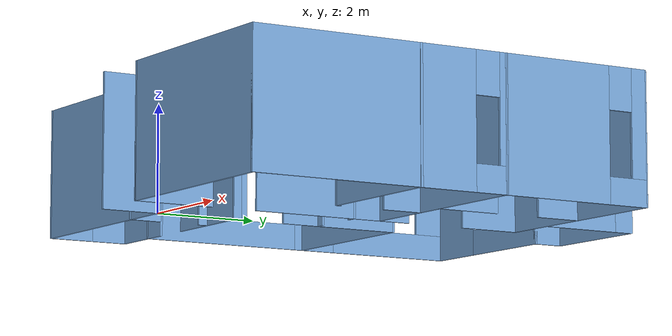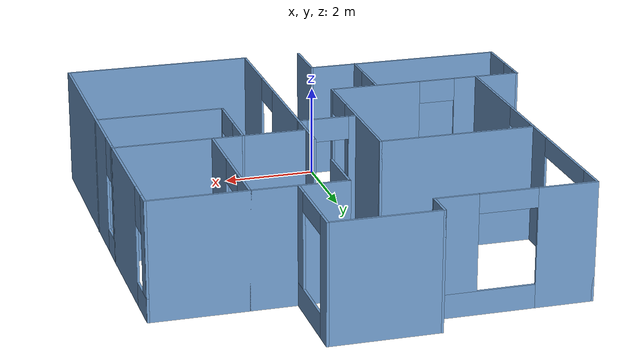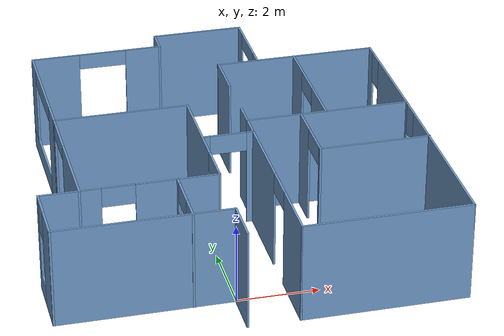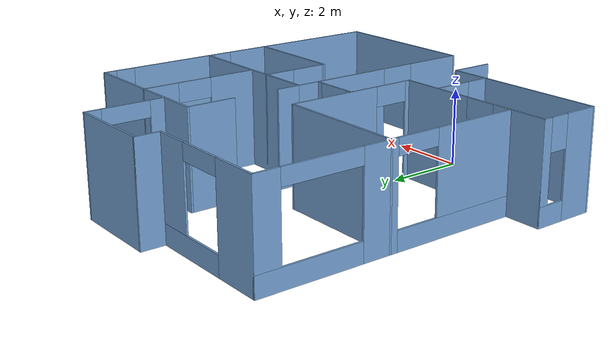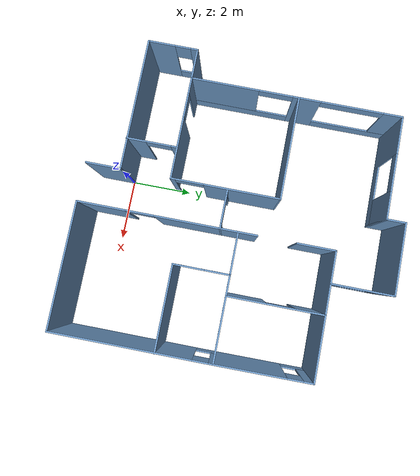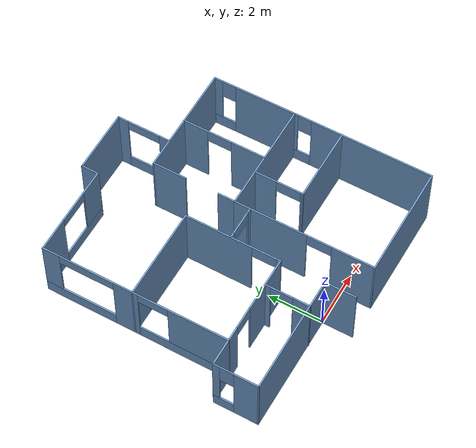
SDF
<?xml version='1.0'?>
<sdf version='1.6'>
  <model name='T8_1160'>
    <pose frame=''>0.515 3.94713 0 0 -0 0</pose>
    <link name='Wall_0'>
      <collision name='Wall_0_Collision'>
        <geometry>
          <box>
            <size>4.31 0.05 2.5</size>
          </box>
        </geometry>
        <pose frame=''>0 0 1.25 0 -0 0</pose>
      </collision>
      <visual name='Wall_0_Visual'>
        <pose frame=''>0 0 1.25 0 -0 0</pose>
        <geometry>
          <box>
            <size>4.31 0.05 2.5</size>
          </box>
        </geometry>
        <material>
          <script>
            <uri>file://media/materials/scripts/gazebo.material</uri>
            <name>Gazebo/Grey</name>
          </script>
          <ambient>0.447059 0.623529 0.811765 1</ambient>
        </material>
        <meta>
          <layer>0</layer>
        </meta>
      </visual>
      <pose frame=''>-2.645 -3.94713 0 0 -0 3.14159</pose>
    </link>
    <link name='Wall_11'>
      <collision name='Wall_11_Collision'>
        <geometry>
          <box>
            <size>3.35552 0.05 2.5</size>
          </box>
        </geometry>
        <pose frame=''>0 0 1.25 0 -0 0</pose>
      </collision>
      <visual name='Wall_11_Visual'>
        <pose frame=''>0 0 1.25 0 -0 0</pose>
        <geometry>
          <box>
            <size>3.35552 0.05 2.5</size>
          </box>
        </geometry>
        <material>
          <script>
            <uri>file://media/materials/scripts/gazebo.material</uri>
            <name>Gazebo/Grey</name>
          </script>
          <ambient>0.447059 0.623529 0.811765 1</ambient>
        </material>
        <meta>
          <layer>0</layer>
        </meta>
      </visual>
      <pose frame=''>-2.1675 1.12987 0 0 -0 3.14159</pose>
    </link>
    <link name='Wall_14'>
      <pose frame=''>-3.82 -0.608633 0 0 -0 -1.5708</pose>
      <visual name='Wall_14_Visual_0'>
        <pose frame=''>-1.65666 0 1.25 0 -0 0</pose>
        <geometry>
          <box>
            <size>0.213672 0.05 2.5</size>
          </box>
        </geometry>
        <material>
          <script>
            <uri>file://media/materials/scripts/gazebo.material</uri>
            <name>Gazebo/Grey</name>
          </script>
          <ambient>0.447059 0.623529 0.811765 1</ambient>
        </material>
        <meta>
          <layer>0</layer>
        </meta>
      </visual>
      <collision name='Wall_14_Collision_0'>
        <geometry>
          <box>
            <size>0.213672 0.05 2.5</size>
          </box>
        </geometry>
        <pose frame=''>-1.65666 0 1.25 0 -0 0</pose>
      </collision>
      <visual name='Wall_14_Visual_1'>
        <pose frame=''>0.106836 0 0.25 0 -0 0</pose>
        <geometry>
          <box>
            <size>3.31333 0.05 0.5</size>
          </box>
        </geometry>
        <material>
          <script>
            <uri>file://media/materials/scripts/gazebo.material</uri>
            <name>Gazebo/Grey</name>
          </script>
          <ambient>0.447059 0.623529 0.811765 1</ambient>
        </material>
        <meta>
          <layer>0</layer>
        </meta>
      </visual>
      <collision name='Wall_14_Collision_1'>
        <geometry>
          <box>
            <size>3.31333 0.05 0.5</size>
          </box>
        </geometry>
        <pose frame=''>0.106836 0 0.25 0 -0 0</pose>
      </collision>
      <visual name='Wall_14_Visual_2'>
        <pose frame=''>0.656836 0 1.5 0 -0 0</pose>
        <geometry>
          <box>
            <size>2.21333 0.05 2</size>
          </box>
        </geometry>
        <material>
          <script>
            <uri>file://media/materials/scripts/gazebo.material</uri>
            <name>Gazebo/Grey</name>
          </script>
          <ambient>0.447059 0.623529 0.811765 1</ambient>
        </material>
        <meta>
          <layer>0</layer>
        </meta>
      </visual>
      <collision name='Wall_14_Collision_2'>
        <geometry>
          <box>
            <size>2.21333 0.05 2</size>
          </box>
        </geometry>
        <pose frame=''>0.656836 0 1.5 0 -0 0</pose>
      </collision>
      <visual name='Wall_14_Visual_3'>
        <pose frame=''>-0.999828 0 2.3 0 -0 0</pose>
        <geometry>
          <box>
            <size>1.1 0.05 0.4</size>
          </box>
        </geometry>
        <material>
          <script>
            <uri>file://media/materials/scripts/gazebo.material</uri>
            <name>Gazebo/Grey</name>
          </script>
          <ambient>0.447059 0.623529 0.811765 1</ambient>
        </material>
        <meta>
          <layer>0</layer>
        </meta>
      </visual>
      <collision name='Wall_14_Collision_3'>
        <geometry>
          <box>
            <size>1.1 0.05 0.4</size>
          </box>
        </geometry>
        <pose frame=''>-0.999828 0 2.3 0 -0 0</pose>
      </collision>
    </link>
    <link name='Wall_16'>
      <collision name='Wall_16_Collision'>
        <geometry>
          <box>
            <size>1.15 0.05 2.5</size>
          </box>
        </geometry>
        <pose frame=''>0 0 1.25 0 -0 0</pose>
      </collision>
      <visual name='Wall_16_Visual'>
        <pose frame=''>0 0 1.25 0 -0 0</pose>
        <geometry>
          <box>
            <size>1.15 0.05 2.5</size>
          </box>
        </geometry>
        <material>
          <script>
            <uri>file://media/materials/scripts/gazebo.material</uri>
            <name>Gazebo/Grey</name>
          </script>
          <ambient>0.447059 0.623529 0.811765 1</ambient>
        </material>
        <meta>
          <layer>0</layer>
        </meta>
      </visual>
      <pose frame=''>-0.515 -4.49713 0 0 -0 -1.5708</pose>
    </link>
    <link name='Wall_18'>
      <pose frame=''>0.735 -2.51163 0 0 -0 1.5708</pose>
      <visual name='Wall_18_Visual_0'>
        <pose frame=''>-1.78983 0 1.25 0 -0 0</pose>
        <geometry>
          <box>
            <size>1.56134 0.05 2.5</size>
          </box>
        </geometry>
        <material>
          <script>
            <uri>file://media/materials/scripts/gazebo.material</uri>
            <name>Gazebo/Grey</name>
          </script>
          <ambient>0.447059 0.623529 0.811765 1</ambient>
        </material>
        <meta>
          <layer>0</layer>
        </meta>
      </visual>
      <collision name='Wall_18_Collision_0'>
        <geometry>
          <box>
            <size>1.56134 0.05 2.5</size>
          </box>
        </geometry>
        <pose frame=''>-1.78983 0 1.25 0 -0 0</pose>
      </collision>
      <visual name='Wall_18_Visual_1'>
        <pose frame=''>1.23067 0 1.25 0 -0 0</pose>
        <geometry>
          <box>
            <size>2.67966 0.05 2.5</size>
          </box>
        </geometry>
        <material>
          <script>
            <uri>file://media/materials/scripts/gazebo.material</uri>
            <name>Gazebo/Grey</name>
          </script>
          <ambient>0.447059 0.623529 0.811765 1</ambient>
        </material>
        <meta>
          <layer>0</layer>
        </meta>
      </visual>
      <collision name='Wall_18_Collision_1'>
        <geometry>
          <box>
            <size>2.67966 0.05 2.5</size>
          </box>
        </geometry>
        <pose frame=''>1.23067 0 1.25 0 -0 0</pose>
      </collision>
      <visual name='Wall_18_Visual_2'>
        <pose frame=''>-0.559159 0 2.25 0 -0 0</pose>
        <geometry>
          <box>
            <size>0.9 0.05 0.5</size>
          </box>
        </geometry>
        <material>
          <script>
            <uri>file://media/materials/scripts/gazebo.material</uri>
            <name>Gazebo/Grey</name>
          </script>
          <ambient>0.447059 0.623529 0.811765 1</ambient>
        </material>
        <meta>
          <layer>0</layer>
        </meta>
      </visual>
      <collision name='Wall_18_Collision_2'>
        <geometry>
          <box>
            <size>0.9 0.05 0.5</size>
          </box>
        </geometry>
        <pose frame=''>-0.559159 0 2.25 0 -0 0</pose>
      </collision>
    </link>
    <link name='Wall_2'>
      <pose frame=''>-4.775 -3.14713 0 0 -0 1.5708</pose>
      <visual name='Wall_2_Visual_0'>
        <pose frame=''>-0.375725 0 1.25 0 -0 0</pose>
        <geometry>
          <box>
            <size>0.89855 0.05 2.5</size>
          </box>
        </geometry>
        <material>
          <script>
            <uri>file://media/materials/scripts/gazebo.material</uri>
            <name>Gazebo/Grey</name>
          </script>
          <ambient>0.447059 0.623529 0.811765 1</ambient>
        </material>
        <meta>
          <layer>0</layer>
        </meta>
      </visual>
      <collision name='Wall_2_Collision_0'>
        <geometry>
          <box>
            <size>0.89855 0.05 2.5</size>
          </box>
        </geometry>
        <pose frame=''>-0.375725 0 1.25 0 -0 0</pose>
      </collision>
      <visual name='Wall_2_Visual_1'>
        <pose frame=''>0.449275 0 0.25 0 -0 0</pose>
        <geometry>
          <box>
            <size>0.75145 0.05 0.5</size>
          </box>
        </geometry>
        <material>
          <script>
            <uri>file://media/materials/scripts/gazebo.material</uri>
            <name>Gazebo/Grey</name>
          </script>
          <ambient>0.447059 0.623529 0.811765 1</ambient>
        </material>
        <meta>
          <layer>0</layer>
        </meta>
      </visual>
      <collision name='Wall_2_Collision_1'>
        <geometry>
          <box>
            <size>0.75145 0.05 0.5</size>
          </box>
        </geometry>
        <pose frame=''>0.449275 0 0.25 0 -0 0</pose>
      </collision>
      <visual name='Wall_2_Visual_2'>
        <pose frame=''>0.699275 0 1.5 0 -0 0</pose>
        <geometry>
          <box>
            <size>0.25145 0.05 2</size>
          </box>
        </geometry>
        <material>
          <script>
            <uri>file://media/materials/scripts/gazebo.material</uri>
            <name>Gazebo/Grey</name>
          </script>
          <ambient>0.447059 0.623529 0.811765 1</ambient>
        </material>
        <meta>
          <layer>0</layer>
        </meta>
      </visual>
      <collision name='Wall_2_Collision_2'>
        <geometry>
          <box>
            <size>0.25145 0.05 2</size>
          </box>
        </geometry>
        <pose frame=''>0.699275 0 1.5 0 -0 0</pose>
      </collision>
      <visual name='Wall_2_Visual_3'>
        <pose frame=''>0.32355 0 2.1 0 -0 0</pose>
        <geometry>
          <box>
            <size>0.5 0.05 0.8</size>
          </box>
        </geometry>
        <material>
          <script>
            <uri>file://media/materials/scripts/gazebo.material</uri>
            <name>Gazebo/Grey</name>
          </script>
          <ambient>0.447059 0.623529 0.811765 1</ambient>
        </material>
        <meta>
          <layer>0</layer>
        </meta>
      </visual>
      <collision name='Wall_2_Collision_3'>
        <geometry>
          <box>
            <size>0.5 0.05 0.8</size>
          </box>
        </geometry>
        <pose frame=''>0.32355 0 2.1 0 -0 0</pose>
      </collision>
    </link>
    <link name='Wall_20'>
      <collision name='Wall_20_Collision'>
        <geometry>
          <box>
            <size>4.08 0.05 2.5</size>
          </box>
        </geometry>
        <pose frame=''>0 0 1.25 0 -0 0</pose>
      </collision>
      <visual name='Wall_20_Visual'>
        <pose frame=''>0 0 1.25 0 -0 0</pose>
        <geometry>
          <box>
            <size>4.08 0.05 2.5</size>
          </box>
        </geometry>
        <material>
          <script>
            <uri>file://media/materials/scripts/gazebo.material</uri>
            <name>Gazebo/Grey</name>
          </script>
          <ambient>0.447059 0.623529 0.811765 1</ambient>
        </material>
        <meta>
          <layer>0</layer>
        </meta>
      </visual>
      <pose frame=''>2.75 -5.05713 0 0 -0 0</pose>
    </link>
    <link name='Wall_22'>
      <pose frame=''>4.765 -2.51163 0 0 -0 1.5708</pose>
      <visual name='Wall_22_Visual_0'>
        <pose frame=''>-0.335589 0 1.25 0 -0 0</pose>
        <geometry>
          <box>
            <size>4.46982 0.05 2.5</size>
          </box>
        </geometry>
        <material>
          <script>
            <uri>file://media/materials/scripts/gazebo.material</uri>
            <name>Gazebo/Grey</name>
          </script>
          <ambient>0.447059 0.623529 0.811765 1</ambient>
        </material>
        <meta>
          <layer>0</layer>
        </meta>
      </visual>
      <collision name='Wall_22_Collision_0'>
        <geometry>
          <box>
            <size>4.46982 0.05 2.5</size>
          </box>
        </geometry>
        <pose frame=''>-0.335589 0 1.25 0 -0 0</pose>
      </collision>
      <visual name='Wall_22_Visual_1'>
        <pose frame=''>2.23491 0 0.25 0 -0 0</pose>
        <geometry>
          <box>
            <size>0.671178 0.05 0.5</size>
          </box>
        </geometry>
        <material>
          <script>
            <uri>file://media/materials/scripts/gazebo.material</uri>
            <name>Gazebo/Grey</name>
          </script>
          <ambient>0.447059 0.623529 0.811765 1</ambient>
        </material>
        <meta>
          <layer>0</layer>
        </meta>
      </visual>
      <collision name='Wall_22_Collision_1'>
        <geometry>
          <box>
            <size>0.671178 0.05 0.5</size>
          </box>
        </geometry>
        <pose frame=''>2.23491 0 0.25 0 -0 0</pose>
      </collision>
      <visual name='Wall_22_Visual_2'>
        <pose frame=''>2.48491 0 1.5 0 -0 0</pose>
        <geometry>
          <box>
            <size>0.171178 0.05 2</size>
          </box>
        </geometry>
        <material>
          <script>
            <uri>file://media/materials/scripts/gazebo.material</uri>
            <name>Gazebo/Grey</name>
          </script>
          <ambient>0.447059 0.623529 0.811765 1</ambient>
        </material>
        <meta>
          <layer>0</layer>
        </meta>
      </visual>
      <collision name='Wall_22_Collision_2'>
        <geometry>
          <box>
            <size>0.171178 0.05 2</size>
          </box>
        </geometry>
        <pose frame=''>2.48491 0 1.5 0 -0 0</pose>
      </collision>
      <visual name='Wall_22_Visual_3'>
        <pose frame=''>2.14932 0 2.1 0 -0 0</pose>
        <geometry>
          <box>
            <size>0.5 0.05 0.8</size>
          </box>
        </geometry>
        <material>
          <script>
            <uri>file://media/materials/scripts/gazebo.material</uri>
            <name>Gazebo/Grey</name>
          </script>
          <ambient>0.447059 0.623529 0.811765 1</ambient>
        </material>
        <meta>
          <layer>0</layer>
        </meta>
      </visual>
      <collision name='Wall_22_Collision_3'>
        <geometry>
          <box>
            <size>0.5 0.05 0.8</size>
          </box>
        </geometry>
        <pose frame=''>2.14932 0 2.1 0 -0 0</pose>
      </collision>
    </link>
    <link name='Wall_24'>
      <collision name='Wall_24_Collision'>
        <geometry>
          <box>
            <size>4.08 0.05 2.5</size>
          </box>
        </geometry>
        <pose frame=''>0 0 1.25 0 -0 0</pose>
      </collision>
      <visual name='Wall_24_Visual'>
        <pose frame=''>0 0 1.25 0 -0 0</pose>
        <geometry>
          <box>
            <size>4.08 0.05 2.5</size>
          </box>
        </geometry>
        <material>
          <script>
            <uri>file://media/materials/scripts/gazebo.material</uri>
            <name>Gazebo/Grey</name>
          </script>
          <ambient>0.447059 0.623529 0.811765 1</ambient>
        </material>
        <meta>
          <layer>0</layer>
        </meta>
      </visual>
      <pose frame=''>2.75 0.033867 0 0 -0 0</pose>
    </link>
    <link name='Wall_27'>
      <pose frame=''>0.1145 -0.539133 0 0 -0 0</pose>
      <visual name='Wall_27_Visual_0'>
        <pose frame=''>-0.547154 0 1.25 0 -0 0</pose>
        <geometry>
          <box>
            <size>0.196693 0.05 2.5</size>
          </box>
        </geometry>
        <material>
          <script>
            <uri>file://media/materials/scripts/gazebo.material</uri>
            <name>Gazebo/Grey</name>
          </script>
          <ambient>0.447059 0.623529 0.811765 1</ambient>
        </material>
        <meta>
          <layer>0</layer>
        </meta>
      </visual>
      <collision name='Wall_27_Collision_0'>
        <geometry>
          <box>
            <size>0.196693 0.05 2.5</size>
          </box>
        </geometry>
        <pose frame=''>-0.547154 0 1.25 0 -0 0</pose>
      </collision>
      <visual name='Wall_27_Visual_1'>
        <pose frame=''>0.548346 0 1.25 0 -0 0</pose>
        <geometry>
          <box>
            <size>0.194307 0.05 2.5</size>
          </box>
        </geometry>
        <material>
          <script>
            <uri>file://media/materials/scripts/gazebo.material</uri>
            <name>Gazebo/Grey</name>
          </script>
          <ambient>0.447059 0.623529 0.811765 1</ambient>
        </material>
        <meta>
          <layer>0</layer>
        </meta>
      </visual>
      <collision name='Wall_27_Collision_1'>
        <geometry>
          <box>
            <size>0.194307 0.05 2.5</size>
          </box>
        </geometry>
        <pose frame=''>0.548346 0 1.25 0 -0 0</pose>
      </collision>
      <visual name='Wall_27_Visual_2'>
        <pose frame=''>0.001193 0 2.25 0 -0 0</pose>
        <geometry>
          <box>
            <size>0.9 0.05 0.5</size>
          </box>
        </geometry>
        <material>
          <script>
            <uri>file://media/materials/scripts/gazebo.material</uri>
            <name>Gazebo/Grey</name>
          </script>
          <ambient>0.447059 0.623529 0.811765 1</ambient>
        </material>
        <meta>
          <layer>0</layer>
        </meta>
      </visual>
      <collision name='Wall_27_Collision_2'>
        <geometry>
          <box>
            <size>0.9 0.05 0.5</size>
          </box>
        </geometry>
        <pose frame=''>0.001193 0 2.25 0 -0 0</pose>
      </collision>
    </link>
    <link name='Wall_29'>
      <collision name='Wall_29_Collision'>
        <geometry>
          <box>
            <size>0.65 0.05 2.5</size>
          </box>
        </geometry>
        <pose frame=''>0 0 1.25 0 -0 0</pose>
      </collision>
      <visual name='Wall_29_Visual'>
        <pose frame=''>0 0 1.25 0 -0 0</pose>
        <geometry>
          <box>
            <size>0.65 0.05 2.5</size>
          </box>
        </geometry>
        <material>
          <script>
            <uri>file://media/materials/scripts/gazebo.material</uri>
            <name>Gazebo/Grey</name>
          </script>
          <ambient>0.447059 0.623529 0.811765 1</ambient>
        </material>
        <meta>
          <layer>0</layer>
        </meta>
      </visual>
      <pose frame=''>0.735 0.333867 0 0 -0 1.5708</pose>
    </link>
    <link name='Wall_31'>
      <collision name='Wall_31_Collision'>
        <geometry>
          <box>
            <size>2.75 0.05 2.5</size>
          </box>
        </geometry>
        <pose frame=''>0 0 1.25 0 -0 0</pose>
      </collision>
      <visual name='Wall_31_Visual'>
        <pose frame=''>0 0 1.25 0 -0 0</pose>
        <geometry>
          <box>
            <size>2.75 0.05 2.5</size>
          </box>
        </geometry>
        <material>
          <script>
            <uri>file://media/materials/scripts/gazebo.material</uri>
            <name>Gazebo/Grey</name>
          </script>
          <ambient>0.447059 0.623529 0.811765 1</ambient>
        </material>
        <meta>
          <layer>0</layer>
        </meta>
      </visual>
      <pose frame=''>3.425 -1.74713 0 0 -0 3.14159</pose>
    </link>
    <link name='Wall_33'>
      <pose frame=''>2.075 -0.856633 0 0 -0 1.5708</pose>
      <visual name='Wall_33_Visual_0'>
        <pose frame=''>-0.861434 0 1.25 0 -0 0</pose>
        <geometry>
          <box>
            <size>0.108132 0.05 2.5</size>
          </box>
        </geometry>
        <material>
          <script>
            <uri>file://media/materials/scripts/gazebo.material</uri>
            <name>Gazebo/Grey</name>
          </script>
          <ambient>0.447059 0.623529 0.811765 1</ambient>
        </material>
        <meta>
          <layer>0</layer>
        </meta>
      </visual>
      <collision name='Wall_33_Collision_0'>
        <geometry>
          <box>
            <size>0.108132 0.05 2.5</size>
          </box>
        </geometry>
        <pose frame=''>-0.861434 0 1.25 0 -0 0</pose>
      </collision>
      <visual name='Wall_33_Visual_1'>
        <pose frame=''>0.504066 0 1.25 0 -0 0</pose>
        <geometry>
          <box>
            <size>0.822868 0.05 2.5</size>
          </box>
        </geometry>
        <material>
          <script>
            <uri>file://media/materials/scripts/gazebo.material</uri>
            <name>Gazebo/Grey</name>
          </script>
          <ambient>0.447059 0.623529 0.811765 1</ambient>
        </material>
        <meta>
          <layer>0</layer>
        </meta>
      </visual>
      <collision name='Wall_33_Collision_1'>
        <geometry>
          <box>
            <size>0.822868 0.05 2.5</size>
          </box>
        </geometry>
        <pose frame=''>0.504066 0 1.25 0 -0 0</pose>
      </collision>
      <visual name='Wall_33_Visual_2'>
        <pose frame=''>-0.357368 0 2.25 0 -0 0</pose>
        <geometry>
          <box>
            <size>0.9 0.05 0.5</size>
          </box>
        </geometry>
        <material>
          <script>
            <uri>file://media/materials/scripts/gazebo.material</uri>
            <name>Gazebo/Grey</name>
          </script>
          <ambient>0.447059 0.623529 0.811765 1</ambient>
        </material>
        <meta>
          <layer>0</layer>
        </meta>
      </visual>
      <collision name='Wall_33_Collision_2'>
        <geometry>
          <box>
            <size>0.9 0.05 0.5</size>
          </box>
        </geometry>
        <pose frame=''>-0.357368 0 2.25 0 -0 0</pose>
      </collision>
    </link>
    <link name='Wall_35'>
      <pose frame=''>-3.82 2.79337 0 0 -0 1.5708</pose>
      <visual name='Wall_35_Visual_0'>
        <pose frame=''>-1.32132 0 1.25 0 -0 0</pose>
        <geometry>
          <box>
            <size>0.734362 0.05 2.5</size>
          </box>
        </geometry>
        <material>
          <script>
            <uri>file://media/materials/scripts/gazebo.material</uri>
            <name>Gazebo/Grey</name>
          </script>
          <ambient>0.447059 0.623529 0.811765 1</ambient>
        </material>
        <meta>
          <layer>0</layer>
        </meta>
      </visual>
      <collision name='Wall_35_Collision_0'>
        <geometry>
          <box>
            <size>0.734362 0.05 2.5</size>
          </box>
        </geometry>
        <pose frame=''>-1.32132 0 1.25 0 -0 0</pose>
      </collision>
      <visual name='Wall_35_Visual_1'>
        <pose frame=''>0.367181 0 0.25 0 -0 0</pose>
        <geometry>
          <box>
            <size>2.64264 0.05 0.5</size>
          </box>
        </geometry>
        <material>
          <script>
            <uri>file://media/materials/scripts/gazebo.material</uri>
            <name>Gazebo/Grey</name>
          </script>
          <ambient>0.447059 0.623529 0.811765 1</ambient>
        </material>
        <meta>
          <layer>0</layer>
        </meta>
      </visual>
      <collision name='Wall_35_Collision_1'>
        <geometry>
          <box>
            <size>2.64264 0.05 0.5</size>
          </box>
        </geometry>
        <pose frame=''>0.367181 0 0.25 0 -0 0</pose>
      </collision>
      <visual name='Wall_35_Visual_2'>
        <pose frame=''>1.36718 0 1.5 0 -0 0</pose>
        <geometry>
          <box>
            <size>0.642638 0.05 2</size>
          </box>
        </geometry>
        <material>
          <script>
            <uri>file://media/materials/scripts/gazebo.material</uri>
            <name>Gazebo/Grey</name>
          </script>
          <ambient>0.447059 0.623529 0.811765 1</ambient>
        </material>
        <meta>
          <layer>0</layer>
        </meta>
      </visual>
      <collision name='Wall_35_Collision_2'>
        <geometry>
          <box>
            <size>0.642638 0.05 2</size>
          </box>
        </geometry>
        <pose frame=''>1.36718 0 1.5 0 -0 0</pose>
      </collision>
      <visual name='Wall_35_Visual_3'>
        <pose frame=''>0.045862 0 2.3 0 -0 0</pose>
        <geometry>
          <box>
            <size>2 0.05 0.4</size>
          </box>
        </geometry>
        <material>
          <script>
            <uri>file://media/materials/scripts/gazebo.material</uri>
            <name>Gazebo/Grey</name>
          </script>
          <ambient>0.447059 0.623529 0.811765 1</ambient>
        </material>
        <meta>
          <layer>0</layer>
        </meta>
      </visual>
      <collision name='Wall_35_Collision_3'>
        <geometry>
          <box>
            <size>2 0.05 0.4</size>
          </box>
        </geometry>
        <pose frame=''>0.045862 0 2.3 0 -0 0</pose>
      </collision>
    </link>
    <link name='Wall_37'>
      <pose frame=''>-2.1675 4.45687 0 0 -0 0</pose>
      <visual name='Wall_37_Visual_0'>
        <pose frame=''>-1.06148 0 1.25 0 -0 0</pose>
        <geometry>
          <box>
            <size>1.23203 0.05 2.5</size>
          </box>
        </geometry>
        <material>
          <script>
            <uri>file://media/materials/scripts/gazebo.material</uri>
            <name>Gazebo/Grey</name>
          </script>
          <ambient>0.447059 0.623529 0.811765 1</ambient>
        </material>
        <meta>
          <layer>0</layer>
        </meta>
      </visual>
      <collision name='Wall_37_Collision_0'>
        <geometry>
          <box>
            <size>1.23203 0.05 2.5</size>
          </box>
        </geometry>
        <pose frame=''>-1.06148 0 1.25 0 -0 0</pose>
      </collision>
      <visual name='Wall_37_Visual_1'>
        <pose frame=''>0.616016 0 0.25 0 -0 0</pose>
        <geometry>
          <box>
            <size>2.12297 0.05 0.5</size>
          </box>
        </geometry>
        <material>
          <script>
            <uri>file://media/materials/scripts/gazebo.material</uri>
            <name>Gazebo/Grey</name>
          </script>
          <ambient>0.447059 0.623529 0.811765 1</ambient>
        </material>
        <meta>
          <layer>0</layer>
        </meta>
      </visual>
      <collision name='Wall_37_Collision_1'>
        <geometry>
          <box>
            <size>2.12297 0.05 0.5</size>
          </box>
        </geometry>
        <pose frame=''>0.616016 0 0.25 0 -0 0</pose>
      </collision>
      <visual name='Wall_37_Visual_2'>
        <pose frame=''>1.21602 0 1.5 0 -0 0</pose>
        <geometry>
          <box>
            <size>0.922968 0.05 2</size>
          </box>
        </geometry>
        <material>
          <script>
            <uri>file://media/materials/scripts/gazebo.material</uri>
            <name>Gazebo/Grey</name>
          </script>
          <ambient>0.447059 0.623529 0.811765 1</ambient>
        </material>
        <meta>
          <layer>0</layer>
        </meta>
      </visual>
      <collision name='Wall_37_Collision_2'>
        <geometry>
          <box>
            <size>0.922968 0.05 2</size>
          </box>
        </geometry>
        <pose frame=''>1.21602 0 1.5 0 -0 0</pose>
      </collision>
      <visual name='Wall_37_Visual_3'>
        <pose frame=''>0.154532 0 2.3 0 -0 0</pose>
        <geometry>
          <box>
            <size>1.2 0.05 0.4</size>
          </box>
        </geometry>
        <material>
          <script>
            <uri>file://media/materials/scripts/gazebo.material</uri>
            <name>Gazebo/Grey</name>
          </script>
          <ambient>0.447059 0.623529 0.811765 1</ambient>
        </material>
        <meta>
          <layer>0</layer>
        </meta>
      </visual>
      <collision name='Wall_37_Collision_3'>
        <geometry>
          <box>
            <size>1.2 0.05 0.4</size>
          </box>
        </geometry>
        <pose frame=''>0.154532 0 2.3 0 -0 0</pose>
      </collision>
    </link>
    <link name='Wall_39'>
      <pose frame=''>4.755 1.56037 0 0 -0 1.57735</pose>
      <visual name='Wall_39_Visual_0'>
        <pose frame=''>-0.419155 0 1.25 0 -0 0</pose>
        <geometry>
          <box>
            <size>2.26536 0.05 2.5</size>
          </box>
        </geometry>
        <material>
          <script>
            <uri>file://media/materials/scripts/gazebo.material</uri>
            <name>Gazebo/Grey</name>
          </script>
          <ambient>0.447059 0.623529 0.811765 1</ambient>
        </material>
        <meta>
          <layer>0</layer>
        </meta>
      </visual>
      <collision name='Wall_39_Collision_0'>
        <geometry>
          <box>
            <size>2.26536 0.05 2.5</size>
          </box>
        </geometry>
        <pose frame=''>-0.419155 0 1.25 0 -0 0</pose>
      </collision>
      <visual name='Wall_39_Visual_1'>
        <pose frame=''>1.13268 0 0.25 0 -0 0</pose>
        <geometry>
          <box>
            <size>0.838311 0.05 0.5</size>
          </box>
        </geometry>
        <material>
          <script>
            <uri>file://media/materials/scripts/gazebo.material</uri>
            <name>Gazebo/Grey</name>
          </script>
          <ambient>0.447059 0.623529 0.811765 1</ambient>
        </material>
        <meta>
          <layer>0</layer>
        </meta>
      </visual>
      <collision name='Wall_39_Collision_1'>
        <geometry>
          <box>
            <size>0.838311 0.05 0.5</size>
          </box>
        </geometry>
        <pose frame=''>1.13268 0 0.25 0 -0 0</pose>
      </collision>
      <visual name='Wall_39_Visual_2'>
        <pose frame=''>1.38268 0 1.5 0 -0 0</pose>
        <geometry>
          <box>
            <size>0.338311 0.05 2</size>
          </box>
        </geometry>
        <material>
          <script>
            <uri>file://media/materials/scripts/gazebo.material</uri>
            <name>Gazebo/Grey</name>
          </script>
          <ambient>0.447059 0.623529 0.811765 1</ambient>
        </material>
        <meta>
          <layer>0</layer>
        </meta>
      </visual>
      <collision name='Wall_39_Collision_2'>
        <geometry>
          <box>
            <size>0.338311 0.05 2</size>
          </box>
        </geometry>
        <pose frame=''>1.38268 0 1.5 0 -0 0</pose>
      </collision>
      <visual name='Wall_39_Visual_3'>
        <pose frame=''>0.963525 0 2.1 0 -0 0</pose>
        <geometry>
          <box>
            <size>0.5 0.05 0.8</size>
          </box>
        </geometry>
        <material>
          <script>
            <uri>file://media/materials/scripts/gazebo.material</uri>
            <name>Gazebo/Grey</name>
          </script>
          <ambient>0.447059 0.623529 0.811765 1</ambient>
        </material>
        <meta>
          <layer>0</layer>
        </meta>
      </visual>
      <collision name='Wall_39_Collision_3'>
        <geometry>
          <box>
            <size>0.5 0.05 0.8</size>
          </box>
        </geometry>
        <pose frame=''>0.963525 0 2.1 0 -0 0</pose>
      </collision>
    </link>
    <link name='Wall_4'>
      <pose frame=''>-2.645 -2.34713 0 0 -0 0</pose>
      <visual name='Wall_4_Visual_0'>
        <pose frame=''>-1.40931 0 1.25 0 -0 0</pose>
        <geometry>
          <box>
            <size>1.49138 0.05 2.5</size>
          </box>
        </geometry>
        <material>
          <script>
            <uri>file://media/materials/scripts/gazebo.material</uri>
            <name>Gazebo/Grey</name>
          </script>
          <ambient>0.447059 0.623529 0.811765 1</ambient>
        </material>
        <meta>
          <layer>0</layer>
        </meta>
      </visual>
      <collision name='Wall_4_Collision_0'>
        <geometry>
          <box>
            <size>1.49138 0.05 2.5</size>
          </box>
        </geometry>
        <pose frame=''>-1.40931 0 1.25 0 -0 0</pose>
      </collision>
      <visual name='Wall_4_Visual_1'>
        <pose frame=''>1.14569 0 1.25 0 -0 0</pose>
        <geometry>
          <box>
            <size>2.01862 0.05 2.5</size>
          </box>
        </geometry>
        <material>
          <script>
            <uri>file://media/materials/scripts/gazebo.material</uri>
            <name>Gazebo/Grey</name>
          </script>
          <ambient>0.447059 0.623529 0.811765 1</ambient>
        </material>
        <meta>
          <layer>0</layer>
        </meta>
      </visual>
      <collision name='Wall_4_Collision_1'>
        <geometry>
          <box>
            <size>2.01862 0.05 2.5</size>
          </box>
        </geometry>
        <pose frame=''>1.14569 0 1.25 0 -0 0</pose>
      </collision>
      <visual name='Wall_4_Visual_2'>
        <pose frame=''>-0.263615 0 2.25 0 -0 0</pose>
        <geometry>
          <box>
            <size>0.8 0.05 0.5</size>
          </box>
        </geometry>
        <material>
          <script>
            <uri>file://media/materials/scripts/gazebo.material</uri>
            <name>Gazebo/Grey</name>
          </script>
          <ambient>0.447059 0.623529 0.811765 1</ambient>
        </material>
        <meta>
          <layer>0</layer>
        </meta>
      </visual>
      <collision name='Wall_4_Collision_2'>
        <geometry>
          <box>
            <size>0.8 0.05 0.5</size>
          </box>
        </geometry>
        <pose frame=''>-0.263615 0 2.25 0 -0 0</pose>
      </collision>
    </link>
    <link name='Wall_41'>
      <collision name='Wall_41_Collision'>
        <geometry>
          <box>
            <size>4.06 0.05 2.5</size>
          </box>
        </geometry>
        <pose frame=''>0 0 1.25 0 -0 0</pose>
      </collision>
      <visual name='Wall_41_Visual'>
        <pose frame=''>0 0 1.25 0 -0 0</pose>
        <geometry>
          <box>
            <size>4.06 0.05 2.5</size>
          </box>
        </geometry>
        <material>
          <script>
            <uri>file://media/materials/scripts/gazebo.material</uri>
            <name>Gazebo/Grey</name>
          </script>
          <ambient>0.447059 0.623529 0.811765 1</ambient>
        </material>
        <meta>
          <layer>0</layer>
        </meta>
      </visual>
      <pose frame=''>2.74 3.08687 0 0 -0 3.14159</pose>
    </link>
    <link name='Wall_43'>
      <collision name='Wall_43_Collision'>
        <geometry>
          <box>
            <size>1.253 0.05 2.5</size>
          </box>
        </geometry>
        <pose frame=''>0 0 1.25 0 -0 0</pose>
      </collision>
      <visual name='Wall_43_Visual'>
        <pose frame=''>0 0 1.25 0 -0 0</pose>
        <geometry>
          <box>
            <size>1.253 0.05 2.5</size>
          </box>
        </geometry>
        <material>
          <script>
            <uri>file://media/materials/scripts/gazebo.material</uri>
            <name>Gazebo/Grey</name>
          </script>
          <ambient>0.447059 0.623529 0.811765 1</ambient>
        </material>
        <meta>
          <layer>0</layer>
        </meta>
      </visual>
      <pose frame=''>0.735 2.48537 0 0 -0 -1.5708</pose>
    </link>
    <link name='Wall_45'>
      <pose frame=''>2.711 1.56037 0 0 -0 -1.5708</pose>
      <visual name='Wall_45_Visual_0'>
        <pose frame=''>-1.0853 0 1.25 0 -0 0</pose>
        <geometry>
          <box>
            <size>0.9324 0.05 2.5</size>
          </box>
        </geometry>
        <material>
          <script>
            <uri>file://media/materials/scripts/gazebo.material</uri>
            <name>Gazebo/Grey</name>
          </script>
          <ambient>0.447059 0.623529 0.811765 1</ambient>
        </material>
        <meta>
          <layer>0</layer>
        </meta>
      </visual>
      <collision name='Wall_45_Collision_0'>
        <geometry>
          <box>
            <size>0.9324 0.05 2.5</size>
          </box>
        </geometry>
        <pose frame=''>-1.0853 0 1.25 0 -0 0</pose>
      </collision>
      <visual name='Wall_45_Visual_1'>
        <pose frame=''>0.9162 0 1.25 0 -0 0</pose>
        <geometry>
          <box>
            <size>1.2706 0.05 2.5</size>
          </box>
        </geometry>
        <material>
          <script>
            <uri>file://media/materials/scripts/gazebo.material</uri>
            <name>Gazebo/Grey</name>
          </script>
          <ambient>0.447059 0.623529 0.811765 1</ambient>
        </material>
        <meta>
          <layer>0</layer>
        </meta>
      </visual>
      <collision name='Wall_45_Collision_1'>
        <geometry>
          <box>
            <size>1.2706 0.05 2.5</size>
          </box>
        </geometry>
        <pose frame=''>0.9162 0 1.25 0 -0 0</pose>
      </collision>
      <visual name='Wall_45_Visual_2'>
        <pose frame=''>-0.1691 0 2.25 0 -0 0</pose>
        <geometry>
          <box>
            <size>0.9 0.05 0.5</size>
          </box>
        </geometry>
        <material>
          <script>
            <uri>file://media/materials/scripts/gazebo.material</uri>
            <name>Gazebo/Grey</name>
          </script>
          <ambient>0.447059 0.623529 0.811765 1</ambient>
        </material>
        <meta>
          <layer>0</layer>
        </meta>
      </visual>
      <collision name='Wall_45_Collision_2'>
        <geometry>
          <box>
            <size>0.9 0.05 0.5</size>
          </box>
        </geometry>
        <pose frame=''>-0.1691 0 2.25 0 -0 0</pose>
      </collision>
    </link>
    <link name='Wall_47'>
      <collision name='Wall_47_Collision'>
        <geometry>
          <box>
            <size>0.65 0.05 2.5</size>
          </box>
        </geometry>
        <pose frame=''>0 0 1.25 0 -0 0</pose>
      </collision>
      <visual name='Wall_47_Visual'>
        <pose frame=''>0 0 1.25 0 -0 0</pose>
        <geometry>
          <box>
            <size>0.65 0.05 2.5</size>
          </box>
        </geometry>
        <material>
          <script>
            <uri>file://media/materials/scripts/gazebo.material</uri>
            <name>Gazebo/Grey</name>
          </script>
          <ambient>0.447059 0.623529 0.811765 1</ambient>
        </material>
        <meta>
          <layer>0</layer>
        </meta>
      </visual>
      <pose frame=''>-0.515 4.75687 0 0 -0 1.5708</pose>
    </link>
    <link name='Wall_48'>
      <collision name='Wall_48_Collision'>
        <geometry>
          <box>
            <size>2.31494 0.05 2.5</size>
          </box>
        </geometry>
        <pose frame=''>0 0 1.25 0 -0 0</pose>
      </collision>
      <visual name='Wall_48_Visual'>
        <pose frame=''>0 0 1.25 0 -0 0</pose>
        <geometry>
          <box>
            <size>2.31494 0.05 2.5</size>
          </box>
        </geometry>
        <material>
          <script>
            <uri>file://media/materials/scripts/gazebo.material</uri>
            <name>Gazebo/Grey</name>
          </script>
          <ambient>0.447059 0.623529 0.811765 1</ambient>
        </material>
        <meta>
          <layer>0</layer>
        </meta>
      </visual>
      <pose frame=''>0.6175 5.05687 0 0 -0 0</pose>
    </link>
    <link name='Wall_49'>
      <pose frame=''>1.75 4.07787 0 0 -0 -1.5708</pose>
      <visual name='Wall_49_Visual_0'>
        <pose frame=''>-0.800206 0 1.25 0 -0 0</pose>
        <geometry>
          <box>
            <size>0.408123 0.05 2.5</size>
          </box>
        </geometry>
        <material>
          <script>
            <uri>file://media/materials/scripts/gazebo.material</uri>
            <name>Gazebo/Grey</name>
          </script>
          <ambient>0.447059 0.623529 0.811765 1</ambient>
        </material>
        <meta>
          <layer>0</layer>
        </meta>
      </visual>
      <collision name='Wall_49_Collision_0'>
        <geometry>
          <box>
            <size>0.408123 0.05 2.5</size>
          </box>
        </geometry>
        <pose frame=''>-0.800206 0 1.25 0 -0 0</pose>
      </collision>
      <visual name='Wall_49_Visual_1'>
        <pose frame=''>0.204061 0 0.25 0 -0 0</pose>
        <geometry>
          <box>
            <size>1.60041 0.05 0.5</size>
          </box>
        </geometry>
        <material>
          <script>
            <uri>file://media/materials/scripts/gazebo.material</uri>
            <name>Gazebo/Grey</name>
          </script>
          <ambient>0.447059 0.623529 0.811765 1</ambient>
        </material>
        <meta>
          <layer>0</layer>
        </meta>
      </visual>
      <collision name='Wall_49_Collision_1'>
        <geometry>
          <box>
            <size>1.60041 0.05 0.5</size>
          </box>
        </geometry>
        <pose frame=''>0.204061 0 0.25 0 -0 0</pose>
      </collision>
      <visual name='Wall_49_Visual_2'>
        <pose frame=''>0.804061 0 1.5 0 -0 0</pose>
        <geometry>
          <box>
            <size>0.400411 0.05 2</size>
          </box>
        </geometry>
        <material>
          <script>
            <uri>file://media/materials/scripts/gazebo.material</uri>
            <name>Gazebo/Grey</name>
          </script>
          <ambient>0.447059 0.623529 0.811765 1</ambient>
        </material>
        <meta>
          <layer>0</layer>
        </meta>
      </visual>
      <collision name='Wall_49_Collision_2'>
        <geometry>
          <box>
            <size>0.400411 0.05 2</size>
          </box>
        </geometry>
        <pose frame=''>0.804061 0 1.5 0 -0 0</pose>
      </collision>
      <visual name='Wall_49_Visual_3'>
        <pose frame=''>0.003856 0 2.3 0 -0 0</pose>
        <geometry>
          <box>
            <size>1.2 0.05 0.4</size>
          </box>
        </geometry>
        <material>
          <script>
            <uri>file://media/materials/scripts/gazebo.material</uri>
            <name>Gazebo/Grey</name>
          </script>
          <ambient>0.447059 0.623529 0.811765 1</ambient>
        </material>
        <meta>
          <layer>0</layer>
        </meta>
      </visual>
      <collision name='Wall_49_Collision_3'>
        <geometry>
          <box>
            <size>1.2 0.05 0.4</size>
          </box>
        </geometry>
        <pose frame=''>0.003856 0 2.3 0 -0 0</pose>
      </collision>
    </link>
    <link name='Wall_7'>
      <pose frame=''>-1.515 -3.16113 0 0 -0 -1.5708</pose>
      <visual name='Wall_7_Visual_0'>
        <pose frame=''>-0.720934 0 1.25 0 -0 0</pose>
        <geometry>
          <box>
            <size>0.208131 0.05 2.5</size>
          </box>
        </geometry>
        <material>
          <script>
            <uri>file://media/materials/scripts/gazebo.material</uri>
            <name>Gazebo/Grey</name>
          </script>
          <ambient>0.447059 0.623529 0.811765 1</ambient>
        </material>
        <meta>
          <layer>0</layer>
        </meta>
      </visual>
      <collision name='Wall_7_Collision_0'>
        <geometry>
          <box>
            <size>0.208131 0.05 2.5</size>
          </box>
        </geometry>
        <pose frame=''>-0.720934 0 1.25 0 -0 0</pose>
      </collision>
      <visual name='Wall_7_Visual_1'>
        <pose frame=''>0.504066 0 1.25 0 -0 0</pose>
        <geometry>
          <box>
            <size>0.641869 0.05 2.5</size>
          </box>
        </geometry>
        <material>
          <script>
            <uri>file://media/materials/scripts/gazebo.material</uri>
            <name>Gazebo/Grey</name>
          </script>
          <ambient>0.447059 0.623529 0.811765 1</ambient>
        </material>
        <meta>
          <layer>0</layer>
        </meta>
      </visual>
      <collision name='Wall_7_Collision_1'>
        <geometry>
          <box>
            <size>0.641869 0.05 2.5</size>
          </box>
        </geometry>
        <pose frame=''>0.504066 0 1.25 0 -0 0</pose>
      </collision>
      <visual name='Wall_7_Visual_2'>
        <pose frame=''>-0.216869 0 2.25 0 -0 0</pose>
        <geometry>
          <box>
            <size>0.8 0.05 0.5</size>
          </box>
        </geometry>
        <material>
          <script>
            <uri>file://media/materials/scripts/gazebo.material</uri>
            <name>Gazebo/Grey</name>
          </script>
          <ambient>0.447059 0.623529 0.811765 1</ambient>
        </material>
        <meta>
          <layer>0</layer>
        </meta>
      </visual>
      <collision name='Wall_7_Collision_2'>
        <geometry>
          <box>
            <size>0.8 0.05 0.5</size>
          </box>
        </geometry>
        <pose frame=''>-0.216869 0 2.25 0 -0 0</pose>
      </collision>
    </link>
    <link name='Wall_9'>
      <pose frame=''>-0.515 -0.608633 0 0 -0 1.5708</pose>
      <visual name='Wall_9_Visual_0'>
        <pose frame=''>-1.68098 0 1.25 0 -0 0</pose>
        <geometry>
          <box>
            <size>0.165039 0.05 2.5</size>
          </box>
        </geometry>
        <material>
          <script>
            <uri>file://media/materials/scripts/gazebo.material</uri>
            <name>Gazebo/Grey</name>
          </script>
          <ambient>0.447059 0.623529 0.811765 1</ambient>
        </material>
        <meta>
          <layer>0</layer>
        </meta>
      </visual>
      <collision name='Wall_9_Collision_0'>
        <geometry>
          <box>
            <size>0.165039 0.05 2.5</size>
          </box>
        </geometry>
        <pose frame=''>-1.68098 0 1.25 0 -0 0</pose>
      </collision>
      <visual name='Wall_9_Visual_1'>
        <pose frame=''>0.532519 0 1.25 0 -0 0</pose>
        <geometry>
          <box>
            <size>2.46196 0.05 2.5</size>
          </box>
        </geometry>
        <material>
          <script>
            <uri>file://media/materials/scripts/gazebo.material</uri>
            <name>Gazebo/Grey</name>
          </script>
          <ambient>0.447059 0.623529 0.811765 1</ambient>
        </material>
        <meta>
          <layer>0</layer>
        </meta>
      </visual>
      <collision name='Wall_9_Collision_1'>
        <geometry>
          <box>
            <size>2.46196 0.05 2.5</size>
          </box>
        </geometry>
        <pose frame=''>0.532519 0 1.25 0 -0 0</pose>
      </collision>
      <visual name='Wall_9_Visual_2'>
        <pose frame=''>-1.14846 0 2.25 0 -0 0</pose>
        <geometry>
          <box>
            <size>0.9 0.05 0.5</size>
          </box>
        </geometry>
        <material>
          <script>
            <uri>file://media/materials/scripts/gazebo.material</uri>
            <name>Gazebo/Grey</name>
          </script>
          <ambient>0.447059 0.623529 0.811765 1</ambient>
        </material>
        <meta>
          <layer>0</layer>
        </meta>
      </visual>
      <collision name='Wall_9_Collision_2'>
        <geometry>
          <box>
            <size>0.9 0.05 0.5</size>
          </box>
        </geometry>
        <pose frame=''>-1.14846 0 2.25 0 -0 0</pose>
      </collision>
    </link>
    <static>1</static>
  </model>
</sdf>
